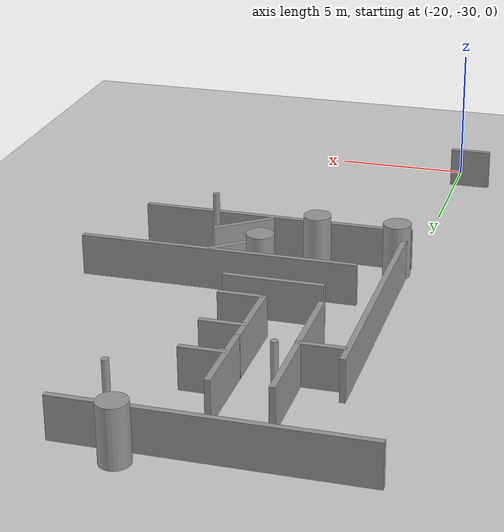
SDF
<sdf version="1.7">
 <world name="default">
  <model name="ground_plane">
   <static>1</static>
   <link name="link">
    <collision name="collision">
     <geometry><plane><normal>0 0 1</normal><size>100 100</size></plane></geometry>
     <surface><friction><ode><mu>100</mu><mu2>50</mu2></ode></friction></surface>
    </collision>
    <visual name="visual">
     <cast_shadows>0</cast_shadows>
     <geometry><plane><normal>0 0 1</normal><size>100 100</size></plane></geometry>
     <material>
      <script><uri>file://media/materials/scripts/gazebo.material</uri><name>Gazebo/Grey</name></script>
     </material>
    </visual>
   </link>
  </model>
  <model name="wall_10x3_clone_3_clone_0_clone_clone_clone_clone_clone_0_clone">
   <link name="link">
    <inertial>
     <mass>0.514545</mass>
     <inertia>
      <ixx>0.0981923</ixx>
      <ixy>0</ixy>
      <ixz>0</ixz>
      <iyy>0.198649</iyy>
      <iyz>0</iyz>
      <izz>0.103887</izz>
     </inertia>
    </inertial>
    <visual name="visual">
     <geometry><box><size>1.54363 0.2 1.5</size></box></geometry>
     <material>
      <script><name>Gazebo/Grey</name><uri>file://media/materials/scripts/gazebo.material</uri></script>
      <shader type="pixel"><normal_map>__default__</normal_map></shader>
      <ambient>0.3 0.3 0.3 1</ambient>
      <diffuse>0.7 0.7 0.7 1</diffuse>
      <specular>0.01 0.01 0.01 1</specular>
      <emissive>0 0 0 1</emissive>
     </material>
    </visual>
    <collision name="collision">
     <geometry><box><size>1.54363 0.2 1.5</size></box></geometry>
     <surface>
      <friction>
       <ode><mu>1</mu><mu2>1</mu2><fdir1>0 0 0</fdir1><slip1>0</slip1><slip2>0</slip2></ode>
       <torsional>
        <coefficient>1</coefficient>
        <patch_radius>0</patch_radius>
        <surface_radius>0</surface_radius>
        <use_patch_radius>1</use_patch_radius>
        <ode><slip>0</slip></ode>
       </torsional>
      </friction>
      <bounce><restitution_coefficient>0</restitution_coefficient><threshold>1e+06</threshold></bounce>
      <contact>
       <collide_without_contact>0</collide_without_contact>
       <collide_without_contact_bitmask>1</collide_without_contact_bitmask>
       <collide_bitmask>1</collide_bitmask>
       <ode>
        <soft_cfm>0</soft_cfm>
        <soft_erp>0.2</soft_erp>
        <kp>1e+13</kp>
        <kd>1</kd>
        <max_vel>0.01</max_vel>
        <min_depth>0</min_depth>
       </ode>
       <bullet>
        <split_impulse>1</split_impulse>
        <split_impulse_penetration_threshold>-0.01</split_impulse_penetration_threshold>
        <soft_cfm>0</soft_cfm>
        <soft_erp>0.2</soft_erp>
        <kp>1e+13</kp>
        <kd>1</kd>
       </bullet>
      </contact>
     </surface>
    </collision>
   </link>
   <static>1</static>
   <pose>-18.9839 -10.701 0.75 0 -0 0</pose>
  </model>
  <model name="wall_10x3_clone_0_clone">
   <link name="link">
    <inertial>
     <mass>1</mass>
     <inertia>
      <ixx>0.166667</ixx>
      <ixy>0</ixy>
      <ixz>0</ixz>
      <iyy>0.166667</iyy>
      <iyz>0</iyz>
      <izz>0.166667</izz>
     </inertia>
    </inertial>
    <visual name="visual">
     <geometry><box><size>10 0.2 1.5</size></box></geometry>
     <material>
      <script><name>Gazebo/Grey</name><uri>file://media/materials/scripts/gazebo.material</uri></script>
      <shader type="pixel"><normal_map>__default__</normal_map></shader>
      <ambient>0.3 0.3 0.3 1</ambient>
      <diffuse>0.7 0.7 0.7 1</diffuse>
      <specular>0.01 0.01 0.01 1</specular>
      <emissive>0 0 0 1</emissive>
     </material>
    </visual>
    <collision name="collision">
     <geometry><box><size>10 0.2 1.5</size></box></geometry>
     <surface>
      <friction>
       <ode><mu>1</mu><mu2>1</mu2><fdir1>0 0 0</fdir1><slip1>0</slip1><slip2>0</slip2></ode>
       <torsional>
        <coefficient>1</coefficient>
        <patch_radius>0</patch_radius>
        <surface_radius>0</surface_radius>
        <use_patch_radius>1</use_patch_radius>
        <ode><slip>0</slip></ode>
       </torsional>
      </friction>
      <bounce><restitution_coefficient>0</restitution_coefficient><threshold>1e+06</threshold></bounce>
      <contact>
       <collide_without_contact>0</collide_without_contact>
       <collide_without_contact_bitmask>1</collide_without_contact_bitmask>
       <collide_bitmask>1</collide_bitmask>
       <ode>
        <soft_cfm>0</soft_cfm>
        <soft_erp>0.2</soft_erp>
        <kp>1e+13</kp>
        <kd>1</kd>
        <max_vel>0.01</max_vel>
        <min_depth>0</min_depth>
       </ode>
       <bullet>
        <split_impulse>1</split_impulse>
        <split_impulse_penetration_threshold>-0.01</split_impulse_penetration_threshold>
        <soft_cfm>0</soft_cfm>
        <soft_erp>0.2</soft_erp>
        <kp>1e+13</kp>
        <kd>1</kd>
       </bullet>
      </contact>
     </surface>
    </collision>
   </link>
   <static>1</static>
   <pose>-17.0157 -5.74623 0.75 0 -0 0</pose>
  </model>
  <model name="wall_10x3_clone_0_clone_clone">
   <link name="link">
    <inertial>
     <mass>1</mass>
     <inertia>
      <ixx>0.166667</ixx>
      <ixy>0</ixy>
      <ixz>0</ixz>
      <iyy>0.166667</iyy>
      <iyz>0</iyz>
      <izz>0.166667</izz>
     </inertia>
    </inertial>
    <visual name="visual">
     <geometry><box><size>10 0.2 1.5</size></box></geometry>
     <material>
      <script><name>Gazebo/Grey</name><uri>file://media/materials/scripts/gazebo.material</uri></script>
      <shader type="pixel"><normal_map>__default__</normal_map></shader>
      <ambient>0.3 0.3 0.3 1</ambient>
      <diffuse>0.7 0.7 0.7 1</diffuse>
      <specular>0.01 0.01 0.01 1</specular>
      <emissive>0 0 0 1</emissive>
     </material>
    </visual>
    <collision name="collision">
     <geometry><box><size>10 0.2 1.5</size></box></geometry>
     <surface>
      <friction>
       <ode><mu>1</mu><mu2>1</mu2><fdir1>0 0 0</fdir1><slip1>0</slip1><slip2>0</slip2></ode>
       <torsional>
        <coefficient>1</coefficient>
        <patch_radius>0</patch_radius>
        <surface_radius>0</surface_radius>
        <use_patch_radius>1</use_patch_radius>
        <ode><slip>0</slip></ode>
       </torsional>
      </friction>
      <bounce><restitution_coefficient>0</restitution_coefficient><threshold>1e+06</threshold></bounce>
      <contact>
       <collide_without_contact>0</collide_without_contact>
       <collide_without_contact_bitmask>1</collide_without_contact_bitmask>
       <collide_bitmask>1</collide_bitmask>
       <ode>
        <soft_cfm>0</soft_cfm>
        <soft_erp>0.2</soft_erp>
        <kp>1e+13</kp>
        <kd>1</kd>
        <max_vel>0.01</max_vel>
        <min_depth>0</min_depth>
       </ode>
       <bullet>
        <split_impulse>1</split_impulse>
        <split_impulse_penetration_threshold>-0.01</split_impulse_penetration_threshold>
        <soft_cfm>0</soft_cfm>
        <soft_erp>0.2</soft_erp>
        <kp>1e+13</kp>
        <kd>1</kd>
       </bullet>
      </contact>
     </surface>
    </collision>
   </link>
   <static>1</static>
   <pose>-14.9013 -19.9728 0.75 0 -0 0</pose>
  </model>
  <model name="wall_10x3_clone_3_clone_0_clone_0_clone">
   <link name="link">
    <inertial>
     <mass>1</mass>
     <inertia>
      <ixx>0.166667</ixx>
      <ixy>0</ixy>
      <ixz>0</ixz>
      <iyy>0.166667</iyy>
      <iyz>0</iyz>
      <izz>0.166667</izz>
     </inertia>
    </inertial>
    <visual name="visual">
     <geometry><box><size>10 0.2 1.5</size></box></geometry>
     <material>
      <script><name>Gazebo/Grey</name><uri>file://media/materials/scripts/gazebo.material</uri></script>
      <shader type="pixel"><normal_map>__default__</normal_map></shader>
      <ambient>0.3 0.3 0.3 1</ambient>
      <diffuse>0.7 0.7 0.7 1</diffuse>
      <specular>0.01 0.01 0.01 1</specular>
      <emissive>0 0 0 1</emissive>
     </material>
    </visual>
    <collision name="collision">
     <geometry><box><size>10 0.2 1.5</size></box></geometry>
     <surface>
      <friction>
       <ode><mu>1</mu><mu2>1</mu2><fdir1>0 0 0</fdir1><slip1>0</slip1><slip2>0</slip2></ode>
       <torsional>
        <coefficient>1</coefficient>
        <patch_radius>0</patch_radius>
        <surface_radius>0</surface_radius>
        <use_patch_radius>1</use_patch_radius>
        <ode><slip>0</slip></ode>
       </torsional>
      </friction>
      <bounce><restitution_coefficient>0</restitution_coefficient><threshold>1e+06</threshold></bounce>
      <contact>
       <collide_without_contact>0</collide_without_contact>
       <collide_without_contact_bitmask>1</collide_without_contact_bitmask>
       <collide_bitmask>1</collide_bitmask>
       <ode>
        <soft_cfm>0</soft_cfm>
        <soft_erp>0.2</soft_erp>
        <kp>1e+13</kp>
        <kd>1</kd>
        <max_vel>0.01</max_vel>
        <min_depth>0</min_depth>
       </ode>
       <bullet>
        <split_impulse>1</split_impulse>
        <split_impulse_penetration_threshold>-0.01</split_impulse_penetration_threshold>
        <soft_cfm>0</soft_cfm>
        <soft_erp>0.2</soft_erp>
        <kp>1e+13</kp>
        <kd>1</kd>
       </bullet>
      </contact>
     </surface>
    </collision>
   </link>
   <static>1</static>
   <pose>-19.7905 -14.9838 0.75 0 -0 1.5708</pose>
  </model>
  <model name="wall_10x3_clone_3_clone_0_clone_clone_clone_clone_6_clone_7_clone">
   <link name="link">
    <inertial>
     <mass>1</mass>
     <inertia>
      <ixx>0.166667</ixx>
      <ixy>0</ixy>
      <ixz>0</ixz>
      <iyy>0.166667</iyy>
      <iyz>0</iyz>
      <izz>0.166667</izz>
     </inertia>
    </inertial>
    <visual name="visual">
     <geometry><box><size>3 0.2 1.5</size></box></geometry>
     <material>
      <script><name>Gazebo/Grey</name><uri>file://media/materials/scripts/gazebo.material</uri></script>
      <shader type="pixel"><normal_map>__default__</normal_map></shader>
      <ambient>0.3 0.3 0.3 1</ambient>
      <diffuse>0.7 0.7 0.7 1</diffuse>
      <specular>0.01 0.01 0.01 1</specular>
      <emissive>0 0 0 1</emissive>
     </material>
    </visual>
    <collision name="collision">
     <geometry><box><size>3 0.2 1.5</size></box></geometry>
     <surface>
      <friction>
       <ode><mu>1</mu><mu2>1</mu2><fdir1>0 0 0</fdir1><slip1>0</slip1><slip2>0</slip2></ode>
       <torsional>
        <coefficient>1</coefficient>
        <patch_radius>0</patch_radius>
        <surface_radius>0</surface_radius>
        <use_patch_radius>1</use_patch_radius>
        <ode><slip>0</slip></ode>
       </torsional>
      </friction>
      <bounce><restitution_coefficient>0</restitution_coefficient><threshold>1e+06</threshold></bounce>
      <contact>
       <collide_without_contact>0</collide_without_contact>
       <collide_without_contact_bitmask>1</collide_without_contact_bitmask>
       <collide_bitmask>1</collide_bitmask>
       <ode>
        <soft_cfm>0</soft_cfm>
        <soft_erp>0.2</soft_erp>
        <kp>1e+13</kp>
        <kd>1</kd>
        <max_vel>0.01</max_vel>
        <min_depth>0</min_depth>
       </ode>
       <bullet>
        <split_impulse>1</split_impulse>
        <split_impulse_penetration_threshold>-0.01</split_impulse_penetration_threshold>
        <soft_cfm>0</soft_cfm>
        <soft_erp>0.2</soft_erp>
        <kp>1e+13</kp>
        <kd>1</kd>
       </bullet>
      </contact>
     </surface>
    </collision>
   </link>
   <static>1</static>
   <pose>-18.2257 -9.29215 0.75 0 -0 1.5708</pose>
  </model>
  <model name="wall_10x3_clone_3_clone_0_clone_clone_clone_clone_6_clone_7_clone_0">
   <link name="link">
    <inertial>
     <mass>1</mass>
     <inertia>
      <ixx>0.166667</ixx>
      <ixy>0</ixy>
      <ixz>0</ixz>
      <iyy>0.166667</iyy>
      <iyz>0</iyz>
      <izz>0.166667</izz>
     </inertia>
    </inertial>
    <visual name="visual">
     <geometry><box><size>3 0.2 1.5</size></box></geometry>
     <material>
      <script><name>Gazebo/Grey</name><uri>file://media/materials/scripts/gazebo.material</uri></script>
      <shader type="pixel"><normal_map>__default__</normal_map></shader>
      <ambient>0.3 0.3 0.3 1</ambient>
      <diffuse>0.7 0.7 0.7 1</diffuse>
      <specular>0.01 0.01 0.01 1</specular>
      <emissive>0 0 0 1</emissive>
     </material>
    </visual>
    <collision name="collision">
     <geometry><box><size>3 0.2 1.5</size></box></geometry>
     <surface>
      <friction>
       <ode><mu>1</mu><mu2>1</mu2><fdir1>0 0 0</fdir1><slip1>0</slip1><slip2>0</slip2></ode>
       <torsional>
        <coefficient>1</coefficient>
        <patch_radius>0</patch_radius>
        <surface_radius>0</surface_radius>
        <use_patch_radius>1</use_patch_radius>
        <ode><slip>0</slip></ode>
       </torsional>
      </friction>
      <bounce><restitution_coefficient>0</restitution_coefficient><threshold>1e+06</threshold></bounce>
      <contact>
       <collide_without_contact>0</collide_without_contact>
       <collide_without_contact_bitmask>1</collide_without_contact_bitmask>
       <collide_bitmask>1</collide_bitmask>
       <ode>
        <soft_cfm>0</soft_cfm>
        <soft_erp>0.2</soft_erp>
        <kp>1e+13</kp>
        <kd>1</kd>
        <max_vel>0.01</max_vel>
        <min_depth>0</min_depth>
       </ode>
       <bullet>
        <split_impulse>1</split_impulse>
        <split_impulse_penetration_threshold>-0.01</split_impulse_penetration_threshold>
        <soft_cfm>0</soft_cfm>
        <soft_erp>0.2</soft_erp>
        <kp>1e+13</kp>
        <kd>1</kd>
       </bullet>
      </contact>
     </surface>
    </collision>
   </link>
   <static>1</static>
   <pose>-18.2147 -12.1161 0.75 0 -0 1.5708</pose>
  </model>
  <model name="wall_10x3_clone_3_clone_0_clone_clone_clone_clone_6_clone_7_clone_1">
   <link name="link">
    <inertial>
     <mass>1</mass>
     <inertia>
      <ixx>0.166667</ixx>
      <ixy>0</ixy>
      <ixz>0</ixz>
      <iyy>0.166667</iyy>
      <iyz>0</iyz>
      <izz>0.166667</izz>
     </inertia>
    </inertial>
    <visual name="visual">
     <geometry><box><size>3 0.2 1.5</size></box></geometry>
     <material>
      <script><name>Gazebo/Grey</name><uri>file://media/materials/scripts/gazebo.material</uri></script>
      <shader type="pixel"><normal_map>__default__</normal_map></shader>
      <ambient>0.3 0.3 0.3 1</ambient>
      <diffuse>0.7 0.7 0.7 1</diffuse>
      <specular>0.01 0.01 0.01 1</specular>
      <emissive>0 0 0 1</emissive>
     </material>
    </visual>
    <collision name="collision">
     <geometry><box><size>3 0.2 1.5</size></box></geometry>
     <surface>
      <friction>
       <ode><mu>1</mu><mu2>1</mu2><fdir1>0 0 0</fdir1><slip1>0</slip1><slip2>0</slip2></ode>
       <torsional>
        <coefficient>1</coefficient>
        <patch_radius>0</patch_radius>
        <surface_radius>0</surface_radius>
        <use_patch_radius>1</use_patch_radius>
        <ode><slip>0</slip></ode>
       </torsional>
      </friction>
      <bounce><restitution_coefficient>0</restitution_coefficient><threshold>1e+06</threshold></bounce>
      <contact>
       <collide_without_contact>0</collide_without_contact>
       <collide_without_contact_bitmask>1</collide_without_contact_bitmask>
       <collide_bitmask>1</collide_bitmask>
       <ode>
        <soft_cfm>0</soft_cfm>
        <soft_erp>0.2</soft_erp>
        <kp>1e+13</kp>
        <kd>1</kd>
        <max_vel>0.01</max_vel>
        <min_depth>0</min_depth>
       </ode>
       <bullet>
        <split_impulse>1</split_impulse>
        <split_impulse_penetration_threshold>-0.01</split_impulse_penetration_threshold>
        <soft_cfm>0</soft_cfm>
        <soft_erp>0.2</soft_erp>
        <kp>1e+13</kp>
        <kd>1</kd>
       </bullet>
      </contact>
     </surface>
    </collision>
   </link>
   <static>1</static>
   <pose>-16.2837 -12.0944 0.75 0 -0 1.5708</pose>
  </model>
  <model name="wall_10x3_clone_3_clone_0_clone_clone_clone_clone_6_clone_7_clone_2">
   <link name="link">
    <inertial>
     <mass>1</mass>
     <inertia>
      <ixx>0.166667</ixx>
      <ixy>0</ixy>
      <ixz>0</ixz>
      <iyy>0.166667</iyy>
      <iyz>0</iyz>
      <izz>0.166667</izz>
     </inertia>
    </inertial>
    <visual name="visual">
     <geometry><box><size>3 0.2 1.5</size></box></geometry>
     <material>
      <script><name>Gazebo/Grey</name><uri>file://media/materials/scripts/gazebo.material</uri></script>
      <shader type="pixel"><normal_map>__default__</normal_map></shader>
      <ambient>0.3 0.3 0.3 1</ambient>
      <diffuse>0.7 0.7 0.7 1</diffuse>
      <specular>0.01 0.01 0.01 1</specular>
      <emissive>0 0 0 1</emissive>
     </material>
    </visual>
    <collision name="collision">
     <geometry><box><size>3 0.2 1.5</size></box></geometry>
     <surface>
      <friction>
       <ode><mu>1</mu><mu2>1</mu2><fdir1>0 0 0</fdir1><slip1>0</slip1><slip2>0</slip2></ode>
       <torsional>
        <coefficient>1</coefficient>
        <patch_radius>0</patch_radius>
        <surface_radius>0</surface_radius>
        <use_patch_radius>1</use_patch_radius>
        <ode><slip>0</slip></ode>
       </torsional>
      </friction>
      <bounce><restitution_coefficient>0</restitution_coefficient><threshold>1e+06</threshold></bounce>
      <contact>
       <collide_without_contact>0</collide_without_contact>
       <collide_without_contact_bitmask>1</collide_without_contact_bitmask>
       <collide_bitmask>1</collide_bitmask>
       <ode>
        <soft_cfm>0</soft_cfm>
        <soft_erp>0.2</soft_erp>
        <kp>1e+13</kp>
        <kd>1</kd>
        <max_vel>0.01</max_vel>
        <min_depth>0</min_depth>
       </ode>
       <bullet>
        <split_impulse>1</split_impulse>
        <split_impulse_penetration_threshold>-0.01</split_impulse_penetration_threshold>
        <soft_cfm>0</soft_cfm>
        <soft_erp>0.2</soft_erp>
        <kp>1e+13</kp>
        <kd>1</kd>
       </bullet>
      </contact>
     </surface>
    </collision>
   </link>
   <static>1</static>
   <pose>-16.279 -9.20495 0.75 0 -0 1.5708</pose>
  </model>
  <model name="wall_10x3_clone_2_clone_1_clone">
   <link name="link">
    <inertial>
     <mass>1</mass>
     <inertia>
      <ixx>0.166667</ixx>
      <ixy>0</ixy>
      <ixz>0</ixz>
      <iyy>0.166667</iyy>
      <iyz>0</iyz>
      <izz>0.166667</izz>
     </inertia>
    </inertial>
    <visual name="visual">
     <geometry><box><size>3.51757 0.2 1.5</size></box></geometry>
     <material>
      <script><name>Gazebo/Grey</name><uri>file://media/materials/scripts/gazebo.material</uri></script>
      <shader type="pixel"><normal_map>__default__</normal_map></shader>
      <ambient>0.3 0.3 0.3 1</ambient>
      <diffuse>0.7 0.7 0.7 1</diffuse>
      <specular>0.01 0.01 0.01 1</specular>
      <emissive>0 0 0 1</emissive>
     </material>
    </visual>
    <collision name="collision">
     <geometry><box><size>3.51757 0.2 1.5</size></box></geometry>
     <surface>
      <friction>
       <ode><mu>1</mu><mu2>1</mu2><fdir1>0 0 0</fdir1><slip1>0</slip1><slip2>0</slip2></ode>
       <torsional>
        <coefficient>1</coefficient>
        <patch_radius>0</patch_radius>
        <surface_radius>0</surface_radius>
        <use_patch_radius>1</use_patch_radius>
        <ode><slip>0</slip></ode>
       </torsional>
      </friction>
      <bounce><restitution_coefficient>0</restitution_coefficient><threshold>1e+06</threshold></bounce>
      <contact>
       <collide_without_contact>0</collide_without_contact>
       <collide_without_contact_bitmask>1</collide_without_contact_bitmask>
       <collide_bitmask>1</collide_bitmask>
       <ode>
        <soft_cfm>0</soft_cfm>
        <soft_erp>0.2</soft_erp>
        <kp>1e+13</kp>
        <kd>1</kd>
        <max_vel>0.01</max_vel>
        <min_depth>0</min_depth>
       </ode>
       <bullet>
        <split_impulse>1</split_impulse>
        <split_impulse_penetration_threshold>-0.01</split_impulse_penetration_threshold>
        <soft_cfm>0</soft_cfm>
        <soft_erp>0.2</soft_erp>
        <kp>1e+13</kp>
        <kd>1</kd>
       </bullet>
      </contact>
     </surface>
    </collision>
   </link>
   <static>1</static>
   <pose>-16.2315 -14.8314 0.75 0 -0 0</pose>
  </model>
  <model name="wall_10x3_clone_2_clone_1_clone_0">
   <link name="link">
    <inertial>
     <mass>1</mass>
     <inertia>
      <ixx>0.166667</ixx>
      <ixy>0</ixy>
      <ixz>0</ixz>
      <iyy>0.166667</iyy>
      <iyz>0</iyz>
      <izz>0.166667</izz>
     </inertia>
    </inertial>
    <visual name="visual">
     <geometry><box><size>9.99998 0.2 1.5</size></box></geometry>
     <material>
      <script><name>Gazebo/Grey</name><uri>file://media/materials/scripts/gazebo.material</uri></script>
      <shader type="pixel"><normal_map>__default__</normal_map></shader>
      <ambient>0.3 0.3 0.3 1</ambient>
      <diffuse>0.7 0.7 0.7 1</diffuse>
      <specular>0.01 0.01 0.01 1</specular>
      <emissive>0 0 0 1</emissive>
     </material>
    </visual>
    <collision name="collision">
     <geometry><box><size>9.99998 0.2 1.5</size></box></geometry>
     <surface>
      <friction>
       <ode><mu>1</mu><mu2>1</mu2><fdir1>0 0 0</fdir1><slip1>0</slip1><slip2>0</slip2></ode>
       <torsional>
        <coefficient>1</coefficient>
        <patch_radius>0</patch_radius>
        <surface_radius>0</surface_radius>
        <use_patch_radius>1</use_patch_radius>
        <ode><slip>0</slip></ode>
       </torsional>
      </friction>
      <bounce><restitution_coefficient>0</restitution_coefficient><threshold>1e+06</threshold></bounce>
      <contact>
       <collide_without_contact>0</collide_without_contact>
       <collide_without_contact_bitmask>1</collide_without_contact_bitmask>
       <collide_bitmask>1</collide_bitmask>
       <ode>
        <soft_cfm>0</soft_cfm>
        <soft_erp>0.2</soft_erp>
        <kp>1e+13</kp>
        <kd>1</kd>
        <max_vel>0.01</max_vel>
        <min_depth>0</min_depth>
       </ode>
       <bullet>
        <split_impulse>1</split_impulse>
        <split_impulse_penetration_threshold>-0.01</split_impulse_penetration_threshold>
        <soft_cfm>0</soft_cfm>
        <soft_erp>0.2</soft_erp>
        <kp>1e+13</kp>
        <kd>1</kd>
       </bullet>
      </contact>
     </surface>
    </collision>
   </link>
   <static>1</static>
   <pose>-13.6598 -16.6701 0.75 0 -0 0</pose>
  </model>
  <model name="wall_10x3_clone_3_clone_0_clone_clone_clone_clone_clone_0_clone_clone_clone_clone_2">
   <link name="link">
    <inertial>
     <mass>0.514545</mass>
     <inertia>
      <ixx>0.0981923</ixx>
      <ixy>0</ixy>
      <ixz>0</ixz>
      <iyy>0.198649</iyy>
      <iyz>0</iyz>
      <izz>0.103887</izz>
     </inertia>
    </inertial>
    <pose>0 0 0 0 0 -2.49068</pose>
    <visual name="visual">
     <geometry><box><size>2.31214 0.2 1.5</size></box></geometry>
     <material>
      <script><name>Gazebo/Grey</name><uri>file://media/materials/scripts/gazebo.material</uri></script>
      <shader type="pixel"><normal_map>__default__</normal_map></shader>
      <ambient>0.3 0.3 0.3 1</ambient>
      <diffuse>0.7 0.7 0.7 1</diffuse>
      <specular>0.01 0.01 0.01 1</specular>
      <emissive>0 0 0 1</emissive>
     </material>
    </visual>
    <collision name="collision">
     <geometry><box><size>2.31214 0.2 1.5</size></box></geometry>
     <surface>
      <friction>
       <ode><mu>1</mu><mu2>1</mu2><fdir1>0 0 0</fdir1><slip1>0</slip1><slip2>0</slip2></ode>
       <torsional>
        <coefficient>1</coefficient>
        <patch_radius>0</patch_radius>
        <surface_radius>0</surface_radius>
        <use_patch_radius>1</use_patch_radius>
        <ode><slip>0</slip></ode>
       </torsional>
      </friction>
      <bounce><restitution_coefficient>0</restitution_coefficient><threshold>1e+06</threshold></bounce>
      <contact>
       <collide_without_contact>0</collide_without_contact>
       <collide_without_contact_bitmask>1</collide_without_contact_bitmask>
       <collide_bitmask>1</collide_bitmask>
       <ode>
        <soft_cfm>0</soft_cfm>
        <soft_erp>0.2</soft_erp>
        <kp>1e+13</kp>
        <kd>1</kd>
        <max_vel>0.01</max_vel>
        <min_depth>0</min_depth>
       </ode>
       <bullet>
        <split_impulse>1</split_impulse>
        <split_impulse_penetration_threshold>-0.01</split_impulse_penetration_threshold>
        <soft_cfm>0</soft_cfm>
        <soft_erp>0.2</soft_erp>
        <kp>1e+13</kp>
        <kd>1</kd>
       </bullet>
      </contact>
     </surface>
    </collision>
   </link>
   <static>1</static>
   <pose>-13.8658 -19.1446 0.75 0 -0 0</pose>
  </model>
  <model name="wall_10x3_clone_3_clone_0_clone_clone_clone_clone_clone_0_clone_clone_clone_clone_3">
   <link name="link">
    <inertial>
     <mass>0.514545</mass>
     <inertia>
      <ixx>0.0981923</ixx>
      <ixy>0</ixy>
      <ixz>0</ixz>
      <iyy>0.198649</iyy>
      <iyz>0</iyz>
      <izz>0.103887</izz>
     </inertia>
    </inertial>
    <pose>0 0 0 0 0 -2.49068</pose>
    <visual name="visual">
     <geometry><box><size>1.54363 0.2 1.5</size></box></geometry>
     <material>
      <script><name>Gazebo/Grey</name><uri>file://media/materials/scripts/gazebo.material</uri></script>
      <shader type="pixel"><normal_map>__default__</normal_map></shader>
      <ambient>0.3 0.3 0.3 1</ambient>
      <diffuse>0.7 0.7 0.7 1</diffuse>
      <specular>0.01 0.01 0.01 1</specular>
      <emissive>0 0 0 1</emissive>
     </material>
    </visual>
    <collision name="collision">
     <geometry><box><size>1.54363 0.2 1.5</size></box></geometry>
     <surface>
      <friction>
       <ode><mu>1</mu><mu2>1</mu2><fdir1>0 0 0</fdir1><slip1>0</slip1><slip2>0</slip2></ode>
       <torsional>
        <coefficient>1</coefficient>
        <patch_radius>0</patch_radius>
        <surface_radius>0</surface_radius>
        <use_patch_radius>1</use_patch_radius>
        <ode><slip>0</slip></ode>
       </torsional>
      </friction>
      <bounce><restitution_coefficient>0</restitution_coefficient><threshold>1e+06</threshold></bounce>
      <contact>
       <collide_without_contact>0</collide_without_contact>
       <collide_without_contact_bitmask>1</collide_without_contact_bitmask>
       <collide_bitmask>1</collide_bitmask>
       <ode>
        <soft_cfm>0</soft_cfm>
        <soft_erp>0.2</soft_erp>
        <kp>1e+13</kp>
        <kd>1</kd>
        <max_vel>0.01</max_vel>
        <min_depth>0</min_depth>
       </ode>
       <bullet>
        <split_impulse>1</split_impulse>
        <split_impulse_penetration_threshold>-0.01</split_impulse_penetration_threshold>
        <soft_cfm>0</soft_cfm>
        <soft_erp>0.2</soft_erp>
        <kp>1e+13</kp>
        <kd>1</kd>
       </bullet>
      </contact>
     </surface>
    </collision>
   </link>
   <static>1</static>
   <pose>-13.9637 -17.1594 0.75 0 -0 0</pose>
  </model>
  <model name="unit_cylinder_clone">
   <link name="link">
    <inertial>
     <mass>1</mass>
     <inertia><ixx>0.145833</ixx><ixy>0</ixy><ixz>0</ixz><iyy>0.145833</iyy><iyz>0</iyz><izz>0.125</izz></inertia>
    </inertial>
    <visual name="visual">
     <geometry><cylinder><radius>0.5</radius><length>2</length></cylinder></geometry>
     <material>
      <script><name>Gazebo/Grey</name><uri>file://media/materials/scripts/gazebo.material</uri></script>
      <shader type="pixel"><normal_map>__default__</normal_map></shader>
      <ambient>0.3 0.3 0.3 1</ambient>
      <diffuse>0.7 0.7 0.7 1</diffuse>
      <specular>0.01 0.01 0.01 1</specular>
      <emissive>0 0 0 1</emissive>
     </material>
    </visual>
    <collision name="collision">
     <geometry><cylinder><radius>0.5</radius><length>2</length></cylinder></geometry>
     <surface>
      <friction>
       <ode><mu>1</mu><mu2>1</mu2><fdir1>0 0 0</fdir1><slip1>0</slip1><slip2>0</slip2></ode>
       <torsional>
        <coefficient>1</coefficient>
        <patch_radius>0</patch_radius>
        <surface_radius>0</surface_radius>
        <use_patch_radius>1</use_patch_radius>
        <ode><slip>0</slip></ode>
       </torsional>
      </friction>
      <bounce><restitution_coefficient>0</restitution_coefficient><threshold>1e+06</threshold></bounce>
      <contact>
       <collide_without_contact>0</collide_without_contact>
       <collide_without_contact_bitmask>1</collide_without_contact_bitmask>
       <collide_bitmask>1</collide_bitmask>
       <ode>
        <soft_cfm>0</soft_cfm>
        <soft_erp>0.2</soft_erp>
        <kp>1e+13</kp>
        <kd>1</kd>
        <max_vel>0.01</max_vel>
        <min_depth>0</min_depth>
       </ode>
       <bullet>
        <split_impulse>1</split_impulse>
        <split_impulse_penetration_threshold>-0.01</split_impulse_penetration_threshold>
        <soft_cfm>0</soft_cfm>
        <soft_erp>0.2</soft_erp>
        <kp>1e+13</kp>
        <kd>1</kd>
       </bullet>
      </contact>
     </surface>
    </collision>
   </link>
   <static>0</static>
   <pose>-15.0556 -17.2719 0.999994 0 -0 0.001489</pose>
  </model>
  <model name="unit_cylinder_clone_0">
   <link name="link">
    <inertial>
     <mass>1</mass>
     <inertia><ixx>0.145833</ixx><ixy>0</ixy><ixz>0</ixz><iyy>0.145833</iyy><iyz>0</iyz><izz>0.125</izz></inertia>
    </inertial>
    <visual name="visual">
     <geometry><cylinder><radius>0.5</radius><length>2</length></cylinder></geometry>
     <material>
      <script><name>Gazebo/Grey</name><uri>file://media/materials/scripts/gazebo.material</uri></script>
      <shader type="pixel"><normal_map>__default__</normal_map></shader>
      <ambient>0.3 0.3 0.3 1</ambient>
      <diffuse>0.7 0.7 0.7 1</diffuse>
      <specular>0.01 0.01 0.01 1</specular>
      <emissive>0 0 0 1</emissive>
     </material>
    </visual>
    <collision name="collision">
     <geometry><cylinder><radius>0.5</radius><length>2</length></cylinder></geometry>
     <surface>
      <friction>
       <ode><mu>1</mu><mu2>1</mu2><fdir1>0 0 0</fdir1><slip1>0</slip1><slip2>0</slip2></ode>
       <torsional>
        <coefficient>1</coefficient>
        <patch_radius>0</patch_radius>
        <surface_radius>0</surface_radius>
        <use_patch_radius>1</use_patch_radius>
        <ode><slip>0</slip></ode>
       </torsional>
      </friction>
      <bounce><restitution_coefficient>0</restitution_coefficient><threshold>1e+06</threshold></bounce>
      <contact>
       <collide_without_contact>0</collide_without_contact>
       <collide_without_contact_bitmask>1</collide_without_contact_bitmask>
       <collide_bitmask>1</collide_bitmask>
       <ode>
        <soft_cfm>0</soft_cfm>
        <soft_erp>0.2</soft_erp>
        <kp>1e+13</kp>
        <kd>1</kd>
        <max_vel>0.01</max_vel>
        <min_depth>0</min_depth>
       </ode>
       <bullet>
        <split_impulse>1</split_impulse>
        <split_impulse_penetration_threshold>-0.01</split_impulse_penetration_threshold>
        <soft_cfm>0</soft_cfm>
        <soft_erp>0.2</soft_erp>
        <kp>1e+13</kp>
        <kd>1</kd>
       </bullet>
      </contact>
     </surface>
    </collision>
   </link>
   <static>0</static>
   <pose>-19.4761 -19.3728 0.999991 0 -0 0.000439</pose>
  </model>
  <model name="unit_cylinder_clone_17">
   <link name="link">
    <inertial>
     <mass>1</mass>
     <inertia><ixx>0.145833</ixx><ixy>0</ixy><ixz>0</ixz><iyy>0.145833</iyy><iyz>0</iyz><izz>0.125</izz></inertia>
    </inertial>
    <visual name="visual">
     <geometry><cylinder><radius>0.5</radius><length>2</length></cylinder></geometry>
     <material>
      <script><name>Gazebo/Grey</name><uri>file://media/materials/scripts/gazebo.material</uri></script>
      <shader type="pixel"><normal_map>__default__</normal_map></shader>
      <ambient>0.3 0.3 0.3 1</ambient>
      <diffuse>0.7 0.7 0.7 1</diffuse>
      <specular>0.01 0.01 0.01 1</specular>
      <emissive>0 0 0 1</emissive>
     </material>
    </visual>
    <collision name="collision">
     <geometry><cylinder><radius>0.5</radius><length>2</length></cylinder></geometry>
     <surface>
      <friction>
       <ode><mu>1</mu><mu2>1</mu2><fdir1>0 0 0</fdir1><slip1>0</slip1><slip2>0</slip2></ode>
       <torsional>
        <coefficient>1</coefficient>
        <patch_radius>0</patch_radius>
        <surface_radius>0</surface_radius>
        <use_patch_radius>1</use_patch_radius>
        <ode><slip>0</slip></ode>
       </torsional>
      </friction>
      <bounce><restitution_coefficient>0</restitution_coefficient><threshold>1e+06</threshold></bounce>
      <contact>
       <collide_without_contact>0</collide_without_contact>
       <collide_without_contact_bitmask>1</collide_without_contact_bitmask>
       <collide_bitmask>1</collide_bitmask>
       <ode>
        <soft_cfm>0</soft_cfm>
        <soft_erp>0.2</soft_erp>
        <kp>1e+13</kp>
        <kd>1</kd>
        <max_vel>0.01</max_vel>
        <min_depth>0</min_depth>
       </ode>
       <bullet>
        <split_impulse>1</split_impulse>
        <split_impulse_penetration_threshold>-0.01</split_impulse_penetration_threshold>
        <soft_cfm>0</soft_cfm>
        <soft_erp>0.2</soft_erp>
        <kp>1e+13</kp>
        <kd>1</kd>
       </bullet>
      </contact>
     </surface>
    </collision>
   </link>
   <static>0</static>
   <pose>-16.56 -19.3728 0.999993 0 -0 0.000444</pose>
  </model>
  <model name="wall_10x3_clone_3_clone_0_clone_clone_clone_clone_clone_0_clone_clone_9_clone">
   <link name="link">
    <inertial>
     <mass>0.514545</mass>
     <inertia>
      <ixx>0.0981923</ixx>
      <ixy>0</ixy>
      <ixz>0</ixz>
      <iyy>0.198649</iyy>
      <iyz>0</iyz>
      <izz>0.103887</izz>
     </inertia>
    </inertial>
    <visual name="visual">
     <geometry><box><size>1.54363 0.2 1.5</size></box></geometry>
     <material>
      <script><name>Gazebo/Grey</name><uri>file://media/materials/scripts/gazebo.material</uri></script>
      <shader type="pixel"><normal_map>__default__</normal_map></shader>
      <ambient>0.3 0.3 0.3 1</ambient>
      <diffuse>0.7 0.7 0.7 1</diffuse>
      <specular>0.01 0.01 0.01 1</specular>
      <emissive>0 0 0 1</emissive>
     </material>
    </visual>
    <collision name="collision">
     <geometry><box><size>1.54363 0.2 1.5</size></box></geometry>
     <surface>
      <friction>
       <ode><mu>1</mu><mu2>1</mu2><fdir1>0 0 0</fdir1><slip1>0</slip1><slip2>0</slip2></ode>
       <torsional>
        <coefficient>1</coefficient>
        <patch_radius>0</patch_radius>
        <surface_radius>0</surface_radius>
        <use_patch_radius>1</use_patch_radius>
        <ode><slip>0</slip></ode>
       </torsional>
      </friction>
      <bounce><restitution_coefficient>0</restitution_coefficient><threshold>1e+06</threshold></bounce>
      <contact>
       <collide_without_contact>0</collide_without_contact>
       <collide_without_contact_bitmask>1</collide_without_contact_bitmask>
       <collide_bitmask>1</collide_bitmask>
       <ode>
        <soft_cfm>0</soft_cfm>
        <soft_erp>0.2</soft_erp>
        <kp>1e+13</kp>
        <kd>1</kd>
        <max_vel>0.01</max_vel>
        <min_depth>0</min_depth>
       </ode>
       <bullet>
        <split_impulse>1</split_impulse>
        <split_impulse_penetration_threshold>-0.01</split_impulse_penetration_threshold>
        <soft_cfm>0</soft_cfm>
        <soft_erp>0.2</soft_erp>
        <kp>1e+13</kp>
        <kd>1</kd>
       </bullet>
      </contact>
     </surface>
    </collision>
   </link>
   <static>1</static>
   <pose>-15.494 -13.4947 0.75 0 -0 0</pose>
  </model>
  <model name="wall_10x3_clone_3_clone_0_clone_clone_clone_clone_clone_0_clone_clone_9_clone_0">
   <link name="link">
    <inertial>
     <mass>0.514545</mass>
     <inertia>
      <ixx>0.0981923</ixx>
      <ixy>0</ixy>
      <ixz>0</ixz>
      <iyy>0.198649</iyy>
      <iyz>0</iyz>
      <izz>0.103887</izz>
     </inertia>
    </inertial>
    <visual name="visual">
     <geometry><box><size>1.54363 0.2 1.5</size></box></geometry>
     <material>
      <script><name>Gazebo/Grey</name><uri>file://media/materials/scripts/gazebo.material</uri></script>
      <shader type="pixel"><normal_map>__default__</normal_map></shader>
      <ambient>0.3 0.3 0.3 1</ambient>
      <diffuse>0.7 0.7 0.7 1</diffuse>
      <specular>0.01 0.01 0.01 1</specular>
      <emissive>0 0 0 1</emissive>
     </material>
    </visual>
    <collision name="collision">
     <geometry><box><size>1.54363 0.2 1.5</size></box></geometry>
     <surface>
      <friction>
       <ode><mu>1</mu><mu2>1</mu2><fdir1>0 0 0</fdir1><slip1>0</slip1><slip2>0</slip2></ode>
       <torsional>
        <coefficient>1</coefficient>
        <patch_radius>0</patch_radius>
        <surface_radius>0</surface_radius>
        <use_patch_radius>1</use_patch_radius>
        <ode><slip>0</slip></ode>
       </torsional>
      </friction>
      <bounce><restitution_coefficient>0</restitution_coefficient><threshold>1e+06</threshold></bounce>
      <contact>
       <collide_without_contact>0</collide_without_contact>
       <collide_without_contact_bitmask>1</collide_without_contact_bitmask>
       <collide_bitmask>1</collide_bitmask>
       <ode>
        <soft_cfm>0</soft_cfm>
        <soft_erp>0.2</soft_erp>
        <kp>1e+13</kp>
        <kd>1</kd>
        <max_vel>0.01</max_vel>
        <min_depth>0</min_depth>
       </ode>
       <bullet>
        <split_impulse>1</split_impulse>
        <split_impulse_penetration_threshold>-0.01</split_impulse_penetration_threshold>
        <soft_cfm>0</soft_cfm>
        <soft_erp>0.2</soft_erp>
        <kp>1e+13</kp>
        <kd>1</kd>
       </bullet>
      </contact>
     </surface>
    </collision>
   </link>
   <static>1</static>
   <pose>-15.5044 -9.54181 0.75 0 -0 0</pose>
  </model>
  <model name="wall_10x3_clone_3_clone_0_clone_clone_clone_clone_clone_0_clone_clone_9_clone_1">
   <link name="link">
    <inertial>
     <mass>0.514545</mass>
     <inertia>
      <ixx>0.0981923</ixx>
      <ixy>0</ixy>
      <ixz>0</ixz>
      <iyy>0.198649</iyy>
      <iyz>0</iyz>
      <izz>0.103887</izz>
     </inertia>
    </inertial>
    <visual name="visual">
     <geometry><box><size>1.54363 0.2 1.5</size></box></geometry>
     <material>
      <script><name>Gazebo/Grey</name><uri>file://media/materials/scripts/gazebo.material</uri></script>
      <shader type="pixel"><normal_map>__default__</normal_map></shader>
      <ambient>0.3 0.3 0.3 1</ambient>
      <diffuse>0.7 0.7 0.7 1</diffuse>
      <specular>0.01 0.01 0.01 1</specular>
      <emissive>0 0 0 1</emissive>
     </material>
    </visual>
    <collision name="collision">
     <geometry><box><size>1.54363 0.2 1.5</size></box></geometry>
     <surface>
      <friction>
       <ode><mu>1</mu><mu2>1</mu2><fdir1>0 0 0</fdir1><slip1>0</slip1><slip2>0</slip2></ode>
       <torsional>
        <coefficient>1</coefficient>
        <patch_radius>0</patch_radius>
        <surface_radius>0</surface_radius>
        <use_patch_radius>1</use_patch_radius>
        <ode><slip>0</slip></ode>
       </torsional>
      </friction>
      <bounce><restitution_coefficient>0</restitution_coefficient><threshold>1e+06</threshold></bounce>
      <contact>
       <collide_without_contact>0</collide_without_contact>
       <collide_without_contact_bitmask>1</collide_without_contact_bitmask>
       <collide_bitmask>1</collide_bitmask>
       <ode>
        <soft_cfm>0</soft_cfm>
        <soft_erp>0.2</soft_erp>
        <kp>1e+13</kp>
        <kd>1</kd>
        <max_vel>0.01</max_vel>
        <min_depth>0</min_depth>
       </ode>
       <bullet>
        <split_impulse>1</split_impulse>
        <split_impulse_penetration_threshold>-0.01</split_impulse_penetration_threshold>
        <soft_cfm>0</soft_cfm>
        <soft_erp>0.2</soft_erp>
        <kp>1e+13</kp>
        <kd>1</kd>
       </bullet>
      </contact>
     </surface>
    </collision>
   </link>
   <static>1</static>
   <pose>-15.5484 -11.4084 0.75 0 -0 0</pose>
  </model>
  <model name="wall_10x3_clone_3_clone_0_clone_clone_clone_clone_clone_0_clone_clone_9_clone_5">
   <link name="link">
    <inertial>
     <mass>0.514545</mass>
     <inertia>
      <ixx>0.0981923</ixx>
      <ixy>0</ixy>
      <ixz>0</ixz>
      <iyy>0.198649</iyy>
      <iyz>0</iyz>
      <izz>0.103887</izz>
     </inertia>
    </inertial>
    <visual name="visual">
     <geometry><box><size>1.54363 0.2 1.5</size></box></geometry>
     <material>
      <script><name>Gazebo/Grey</name><uri>file://media/materials/scripts/gazebo.material</uri></script>
      <shader type="pixel"><normal_map>__default__</normal_map></shader>
      <ambient>0.3 0.3 0.3 1</ambient>
      <diffuse>0.7 0.7 0.7 1</diffuse>
      <specular>0.01 0.01 0.01 1</specular>
      <emissive>0 0 0 1</emissive>
     </material>
    </visual>
    <collision name="collision">
     <geometry><box><size>1.54363 0.2 1.5</size></box></geometry>
     <surface>
      <friction>
       <ode><mu>1</mu><mu2>1</mu2><fdir1>0 0 0</fdir1><slip1>0</slip1><slip2>0</slip2></ode>
       <torsional>
        <coefficient>1</coefficient>
        <patch_radius>0</patch_radius>
        <surface_radius>0</surface_radius>
        <use_patch_radius>1</use_patch_radius>
        <ode><slip>0</slip></ode>
       </torsional>
      </friction>
      <bounce><restitution_coefficient>0</restitution_coefficient><threshold>1e+06</threshold></bounce>
      <contact>
       <collide_without_contact>0</collide_without_contact>
       <collide_without_contact_bitmask>1</collide_without_contact_bitmask>
       <collide_bitmask>1</collide_bitmask>
       <ode>
        <soft_cfm>0</soft_cfm>
        <soft_erp>0.2</soft_erp>
        <kp>1e+13</kp>
        <kd>1</kd>
        <max_vel>0.01</max_vel>
        <min_depth>0</min_depth>
       </ode>
       <bullet>
        <split_impulse>1</split_impulse>
        <split_impulse_penetration_threshold>-0.01</split_impulse_penetration_threshold>
        <soft_cfm>0</soft_cfm>
        <soft_erp>0.2</soft_erp>
        <kp>1e+13</kp>
        <kd>1</kd>
       </bullet>
      </contact>
     </surface>
    </collision>
   </link>
   <static>1</static>
   <pose>-20.5844 -28.6559 0.75 0 -0 0</pose>
  </model>
  <model name="unit_sphere">
   <pose>-15.6837 -10.8084 0.425373 -0.11355 0.082537 0.03749</pose>
   <link name="link">
    <inertial>
     <mass>1</mass>
     <inertia><ixx>0.1</ixx><ixy>0</ixy><ixz>0</ixz><iyy>0.1</iyy><iyz>0</iyz><izz>0.1</izz></inertia>
    </inertial>
    <collision name="collision"><geometry><sphere><radius>0.425373</radius></sphere></geometry></collision>
    <visual name="visual">
     <geometry><sphere><radius>0.425373</radius></sphere></geometry>
     <material>
      <script><name>Gazebo/Grey</name><uri>file://media/materials/scripts/gazebo.material</uri></script>
     </material>
    </visual>
   </link>
  </model>
  <model name="unit_sphere_clone">
   <pose>-19.1814 -6.3463 0.5 -0.007613 0.138143 0.036481</pose>
   <link name="link">
    <inertial>
     <mass>1</mass>
     <inertia><ixx>0.1</ixx><ixy>0</ixy><ixz>0</ixz><iyy>0.1</iyy><iyz>0</iyz><izz>0.1</izz></inertia>
    </inertial>
    <collision name="collision"><geometry><sphere><radius>0.5</radius></sphere></geometry></collision>
    <visual name="visual">
     <geometry><sphere><radius>0.5</radius></sphere></geometry>
     <material>
      <script><name>Gazebo/Grey</name><uri>file://media/materials/scripts/gazebo.material</uri></script>
     </material>
    </visual>
   </link>
  </model>
  <model name="unit_cylinder_0_clone_21">
   <pose>-13.6391 -6.49959 1.23089 0 0 -0.030523</pose>
   <link name="link">
    <inertial>
     <mass>1</mass>
     <inertia><ixx>0.145833</ixx><ixy>0</ixy><ixz>0</ixz><iyy>0.145833</iyy><iyz>0</iyz><izz>0.125</izz></inertia>
    </inertial>
    <collision name="collision">
     <geometry><cylinder><radius>0.120231</radius><length>2.46178</length></cylinder></geometry>
    </collision>
    <visual name="visual">
     <geometry><cylinder><radius>0.120231</radius><length>2.46178</length></cylinder></geometry>
     <material>
      <script><name>Gazebo/Grey</name><uri>file://media/materials/scripts/gazebo.material</uri></script>
     </material>
    </visual>
   </link>
  </model>
  <model name="unit_cylinder_0_clone_23">
   <pose>-18.0049 -8.82998 1.23089 0 0 -0.029161</pose>
   <link name="link">
    <inertial>
     <mass>1</mass>
     <inertia><ixx>0.145833</ixx><ixy>0</ixy><ixz>0</ixz><iyy>0.145833</iyy><iyz>0</iyz><izz>0.125</izz></inertia>
    </inertial>
    <collision name="collision">
     <geometry><cylinder><radius>0.120231</radius><length>2.46178</length></cylinder></geometry>
    </collision>
    <visual name="visual">
     <geometry><cylinder><radius>0.120231</radius><length>2.46178</length></cylinder></geometry>
     <material>
      <script><name>Gazebo/Grey</name><uri>file://media/materials/scripts/gazebo.material</uri></script>
     </material>
    </visual>
   </link>
  </model>
  <model name="unit_cylinder_clone_15_clone_0">
   <link name="link">
    <inertial>
     <mass>1</mass>
     <inertia><ixx>0.145833</ixx><ixy>0</ixy><ixz>0</ixz><iyy>0.145833</iyy><iyz>0</iyz><izz>0.125</izz></inertia>
    </inertial>
    <visual name="visual">
     <geometry><cylinder><radius>0.5</radius><length>2</length></cylinder></geometry>
     <material>
      <script><name>Gazebo/Grey</name><uri>file://media/materials/scripts/gazebo.material</uri></script>
      <shader type="pixel"><normal_map>__default__</normal_map></shader>
      <ambient>0.3 0.3 0.3 1</ambient>
      <diffuse>0.7 0.7 0.7 1</diffuse>
      <specular>0.01 0.01 0.01 1</specular>
      <emissive>0 0 0 1</emissive>
     </material>
    </visual>
    <collision name="collision">
     <geometry><cylinder><radius>0.5</radius><length>2</length></cylinder></geometry>
     <surface>
      <friction>
       <ode><mu>1</mu><mu2>1</mu2><fdir1>0 0 0</fdir1><slip1>0</slip1><slip2>0</slip2></ode>
       <torsional>
        <coefficient>1</coefficient>
        <patch_radius>0</patch_radius>
        <surface_radius>0</surface_radius>
        <use_patch_radius>1</use_patch_radius>
        <ode><slip>0</slip></ode>
       </torsional>
      </friction>
      <bounce><restitution_coefficient>0</restitution_coefficient><threshold>1e+06</threshold></bounce>
      <contact>
       <collide_without_contact>0</collide_without_contact>
       <collide_without_contact_bitmask>1</collide_without_contact_bitmask>
       <collide_bitmask>1</collide_bitmask>
       <ode>
        <soft_cfm>0</soft_cfm>
        <soft_erp>0.2</soft_erp>
        <kp>1e+13</kp>
        <kd>1</kd>
        <max_vel>0.01</max_vel>
        <min_depth>0</min_depth>
       </ode>
       <bullet>
        <split_impulse>1</split_impulse>
        <split_impulse_penetration_threshold>-0.01</split_impulse_penetration_threshold>
        <soft_cfm>0</soft_cfm>
        <soft_erp>0.2</soft_erp>
        <kp>1e+13</kp>
        <kd>1</kd>
       </bullet>
      </contact>
     </surface>
    </collision>
   </link>
   <static>0</static>
   <pose>-14.3937 -5.06896 0.999997 0 -0 0.066515</pose>
  </model>
  <model name="unit_cylinder_0_clone_20_clone_clone">
   <pose>-12.8064 -19.2875 1.23089 0 0 -0.030449</pose>
   <link name="link">
    <inertial>
     <mass>1</mass>
     <inertia><ixx>0.145833</ixx><ixy>0</ixy><ixz>0</ixz><iyy>0.145833</iyy><iyz>0</iyz><izz>0.125</izz></inertia>
    </inertial>
    <collision name="collision">
     <geometry><cylinder><radius>0.120231</radius><length>2.46178</length></cylinder></geometry>
    </collision>
    <visual name="visual">
     <geometry><cylinder><radius>0.120231</radius><length>2.46178</length></cylinder></geometry>
     <material>
      <script><name>Gazebo/Grey</name><uri>file://media/materials/scripts/gazebo.material</uri></script>
     </material>
    </visual>
   </link>
  </model>
 </world>
</sdf>
